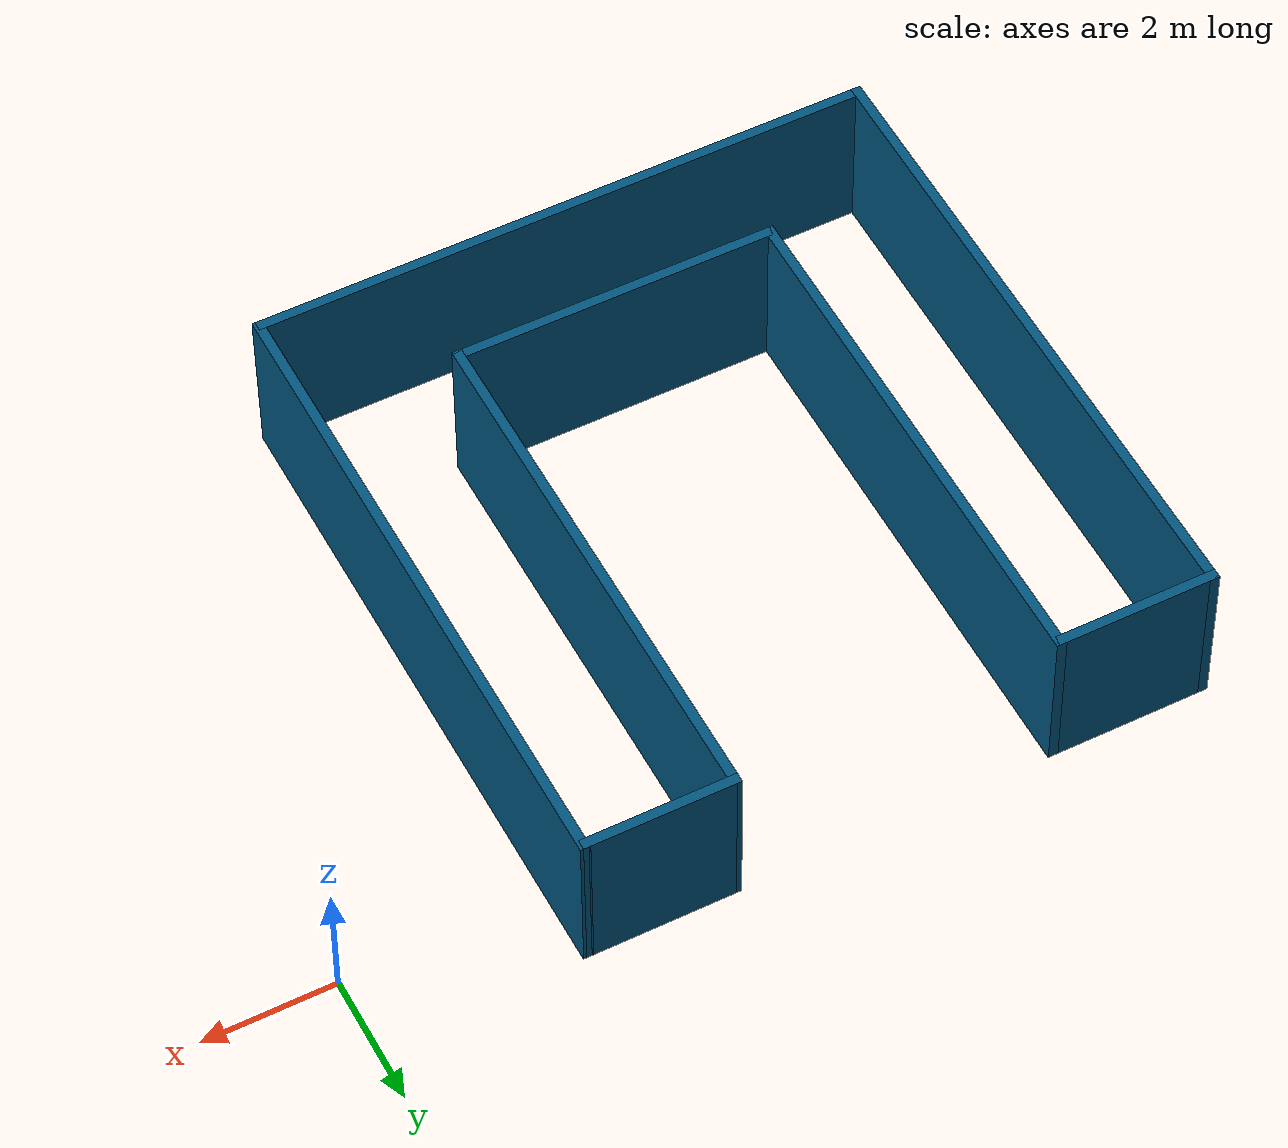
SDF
<?xml version='1.0'?>
<sdf version='1.6'>
  <model name='mybuilding'>
    <pose frame=''>-7.80415 -3.84762 0 0 -0 0</pose>
    <link name='Wall_11'>
      <collision name='Wall_11_Collision'>
        <geometry>
          <box>
            <size>9.51386 0.15 2.5</size>
          </box>
        </geometry>
        <pose frame=''>0 0 1.25 0 -0 0</pose>
      </collision>
      <visual name='Wall_11_Visual'>
        <pose frame=''>0 0 1.25 0 -0 0</pose>
        <geometry>
          <box>
            <size>9.51386 0.15 2.5</size>
          </box>
        </geometry>
        <material>
          <script>
            <uri>file://media/materials/scripts/gazebo.material</uri>
            <name>Gazebo/Grey</name>
          </script>
          <ambient>0 0.333333 0.498039 1</ambient>
        </material>
        <meta>
          <layer>0</layer>
        </meta>
      </visual>
      <pose frame=''>-0.023257 -4.92502 0 0 0 -3.14145</pose>
    </link>
    <link name='Wall_2'>
      <collision name='Wall_2_Collision'>
        <geometry>
          <box>
            <size>10 0.15 2.5</size>
          </box>
        </geometry>
        <pose frame=''>0 0 1.25 0 -0 0</pose>
      </collision>
      <visual name='Wall_2_Visual'>
        <pose frame=''>0 0 1.25 0 -0 0</pose>
        <geometry>
          <box>
            <size>10 0.15 2.5</size>
          </box>
        </geometry>
        <material>
          <script>
            <uri>file://media/materials/scripts/gazebo.material</uri>
            <name>Gazebo/Grey</name>
          </script>
          <ambient>0 0.333333 0.498039 1</ambient>
        </material>
        <meta>
          <layer>0</layer>
        </meta>
      </visual>
      <pose frame=''>-4.70519 -0.000705 0 0 -0 1.5708</pose>
    </link>
    <link name='Wall_3'>
      <collision name='Wall_3_Collision'>
        <geometry>
          <box>
            <size>2.5 0.15 2.5</size>
          </box>
        </geometry>
        <pose frame=''>0 0 1.25 0 -0 0</pose>
      </collision>
      <visual name='Wall_3_Visual'>
        <pose frame=''>0 0 1.25 0 -0 0</pose>
        <geometry>
          <box>
            <size>2.5 0.15 2.5</size>
          </box>
        </geometry>
        <material>
          <script>
            <uri>file://media/materials/scripts/gazebo.material</uri>
            <name>Gazebo/Grey</name>
          </script>
          <ambient>0 0.333333 0.498039 1</ambient>
        </material>
        <meta>
          <layer>0</layer>
        </meta>
      </visual>
      <pose frame=''>-3.53019 4.92429 0 0 -0 0</pose>
    </link>
    <link name='Wall_4'>
      <collision name='Wall_4_Collision'>
        <geometry>
          <box>
            <size>8.25 0.15 2.5</size>
          </box>
        </geometry>
        <pose frame=''>0 0 1.25 0 -0 0</pose>
      </collision>
      <visual name='Wall_4_Visual'>
        <pose frame=''>0 0 1.25 0 -0 0</pose>
        <geometry>
          <box>
            <size>8.25 0.15 2.5</size>
          </box>
        </geometry>
        <material>
          <script>
            <uri>file://media/materials/scripts/gazebo.material</uri>
            <name>Gazebo/Grey</name>
          </script>
          <ambient>0 0.333333 0.498039 1</ambient>
        </material>
        <meta>
          <layer>0</layer>
        </meta>
      </visual>
      <pose frame=''>-2.35519 0.874295 0 0 0 -1.5708</pose>
    </link>
    <link name='Wall_5'>
      <collision name='Wall_5_Collision'>
        <geometry>
          <box>
            <size>5 0.15 2.5</size>
          </box>
        </geometry>
        <pose frame=''>0 0 1.25 0 -0 0</pose>
      </collision>
      <visual name='Wall_5_Visual'>
        <pose frame=''>0 0 1.25 0 -0 0</pose>
        <geometry>
          <box>
            <size>5 0.15 2.5</size>
          </box>
        </geometry>
        <material>
          <script>
            <uri>file://media/materials/scripts/gazebo.material</uri>
            <name>Gazebo/Grey</name>
          </script>
          <ambient>0 0.333333 0.498039 1</ambient>
        </material>
        <meta>
          <layer>0</layer>
        </meta>
      </visual>
      <pose frame=''>0.069814 -3.1757 0 0 -0 0</pose>
    </link>
    <link name='Wall_6'>
      <collision name='Wall_6_Collision'>
        <geometry>
          <box>
            <size>8.25 0.15 2.5</size>
          </box>
        </geometry>
        <pose frame=''>0 0 1.25 0 -0 0</pose>
      </collision>
      <visual name='Wall_6_Visual'>
        <pose frame=''>0 0 1.25 0 -0 0</pose>
        <geometry>
          <box>
            <size>8.25 0.15 2.5</size>
          </box>
        </geometry>
        <material>
          <script>
            <uri>file://media/materials/scripts/gazebo.material</uri>
            <name>Gazebo/Grey</name>
          </script>
          <ambient>0 0.333333 0.498039 1</ambient>
        </material>
        <meta>
          <layer>0</layer>
        </meta>
      </visual>
      <pose frame=''>2.49481 0.874295 0 0 -0 1.5708</pose>
    </link>
    <link name='Wall_7'>
      <collision name='Wall_7_Collision'>
        <geometry>
          <box>
            <size>2.31386 0.15 2.5</size>
          </box>
        </geometry>
        <pose frame=''>0 0 1.25 0 -0 0</pose>
      </collision>
      <visual name='Wall_7_Visual'>
        <pose frame=''>0 0 1.25 0 -0 0</pose>
        <geometry>
          <box>
            <size>2.31386 0.15 2.5</size>
          </box>
        </geometry>
        <material>
          <script>
            <uri>file://media/materials/scripts/gazebo.material</uri>
            <name>Gazebo/Grey</name>
          </script>
          <ambient>0 0.333333 0.498039 1</ambient>
        </material>
        <meta>
          <layer>0</layer>
        </meta>
      </visual>
      <pose frame=''>3.57674 4.92498 0 0 -0 0.000634</pose>
    </link>
    <link name='Wall_8'>
      <collision name='Wall_8_Collision'>
        <geometry>
          <box>
            <size>10 0.15 2.5</size>
          </box>
        </geometry>
        <pose frame=''>0 0 1.25 0 -0 0</pose>
      </collision>
      <visual name='Wall_8_Visual'>
        <pose frame=''>0 0 1.25 0 -0 0</pose>
        <geometry>
          <box>
            <size>10 0.15 2.5</size>
          </box>
        </geometry>
        <material>
          <script>
            <uri>file://media/materials/scripts/gazebo.material</uri>
            <name>Gazebo/Grey</name>
          </script>
          <ambient>0 0.333333 0.498039 1</ambient>
        </material>
        <meta>
          <layer>0</layer>
        </meta>
      </visual>
      <pose frame=''>4.7052 0.000668 0 0 0 -1.5708</pose>
    </link>
    <static>1</static>
  </model>
</sdf>
